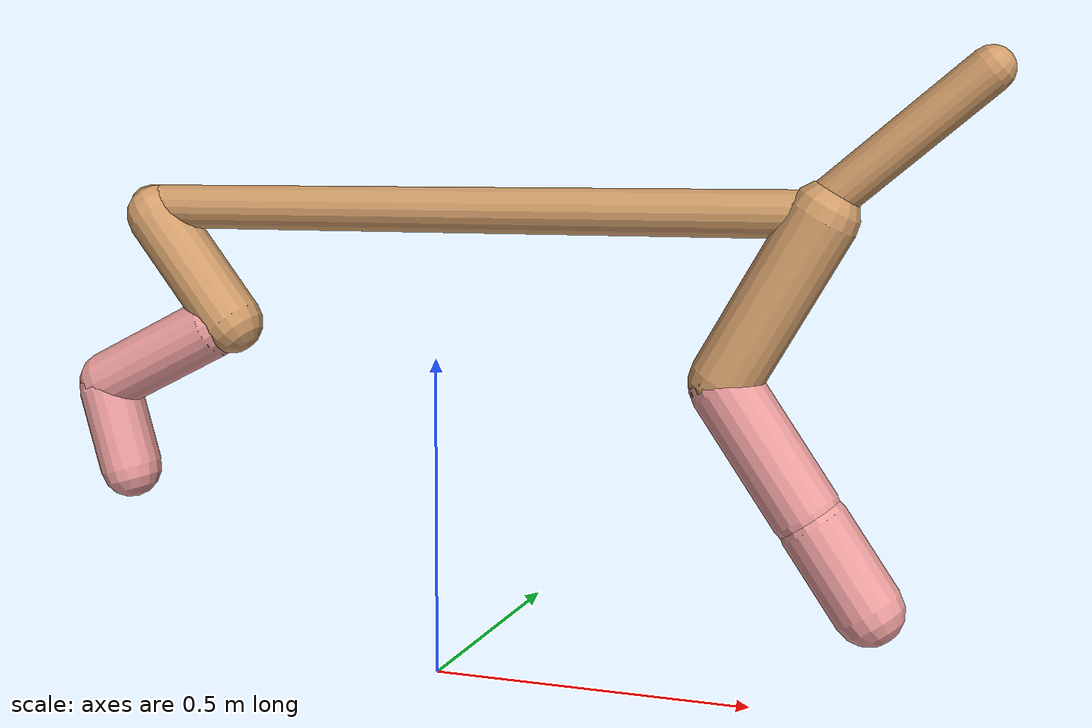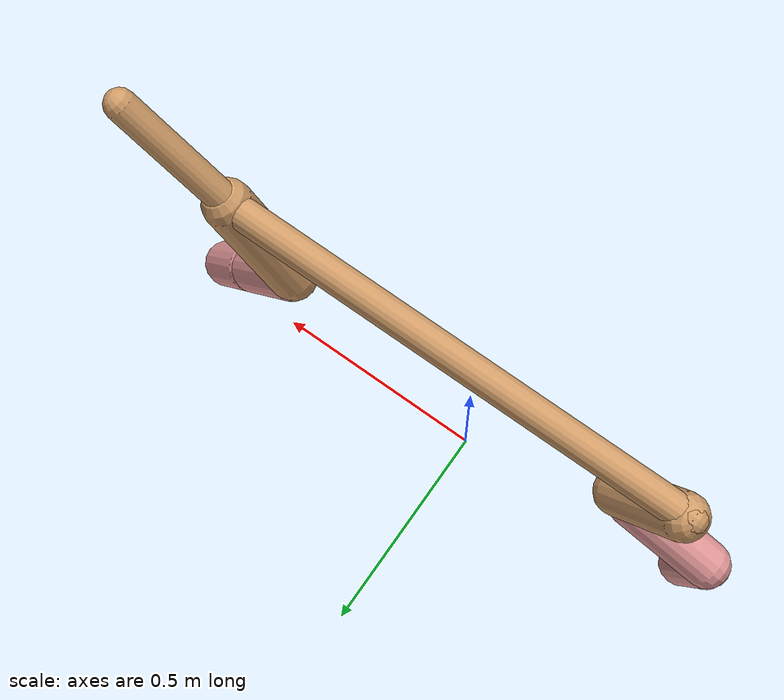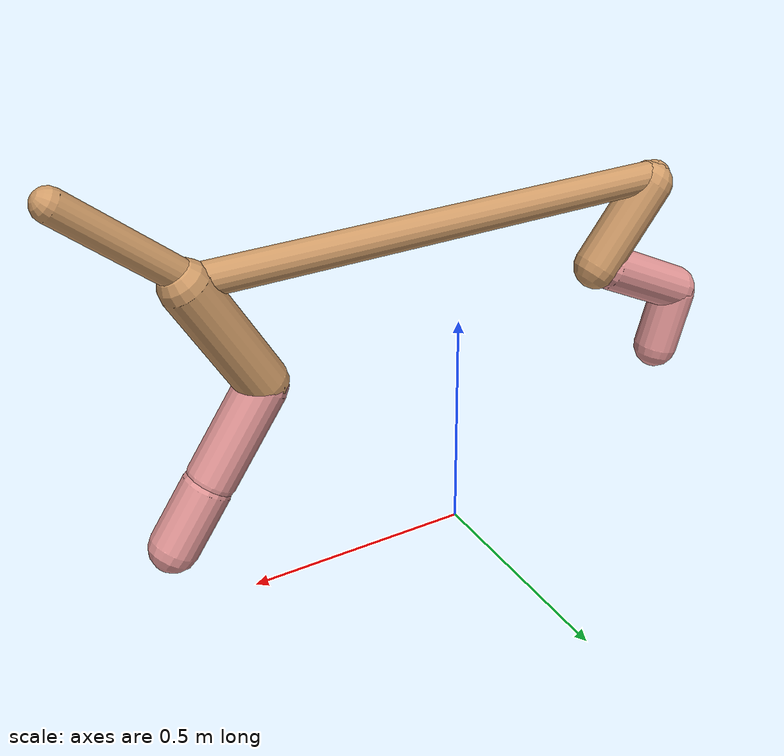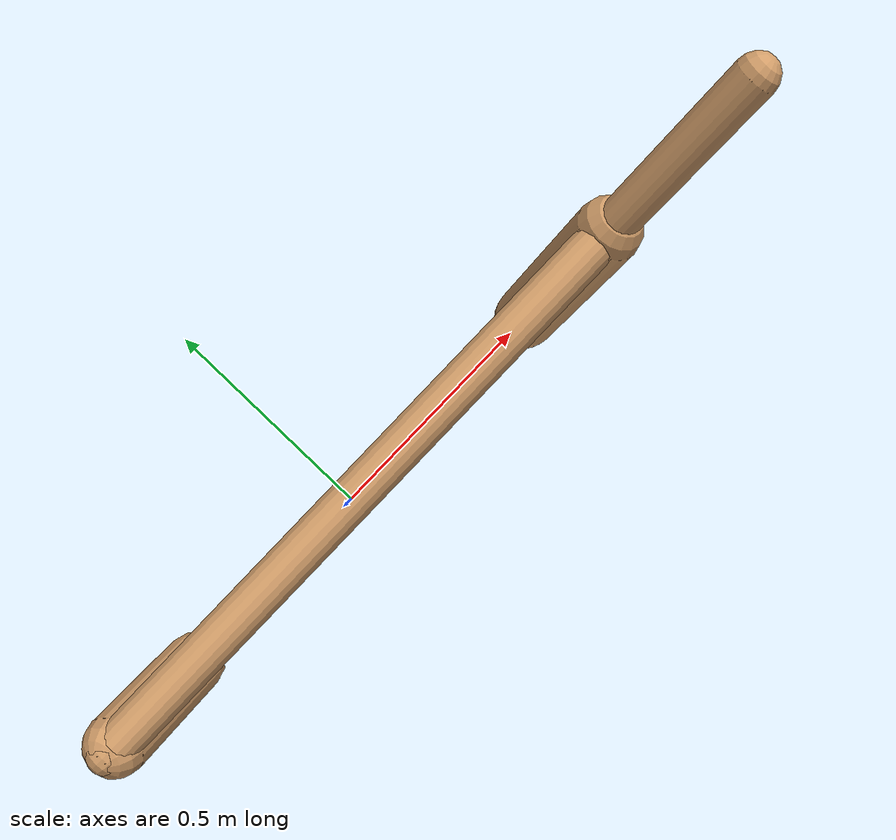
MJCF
<mujoco model="cheetah">
  <compiler angle="radian" coordinate="local" inertiafromgeom="true" settotalmass="14" />
  <default>
    <joint armature=".1" damping=".01" limited="true" solimplimit="0 .8 .03" solreflimit=".02 1" stiffness="8" />
    <geom conaffinity="0" condim="3" contype="1" friction="0.8 .1 .1" rgba="0.8 0.6 .4 1" solimp="0.0 0.8 0.01" solref="0.02 1" />
    <motor ctrllimited="true" ctrlrange="-1 1" />
  </default>
  <size nstack="300000" nuser_geom="1" />
  <option gravity="0 0 -9.81" timestep="0.01" />
  <worldbody>
    <body name="torso" pos="0.0 0.0 0.7297346703075319">
      <joint armature="0" axis="1 0 0" damping="0" limited="false" name="ignorex" pos="0 0 0" stiffness="0" type="slide" />
      <joint armature="0" axis="0 0 1" damping="0" limited="false" name="ignorez" pos="0 0 0" stiffness="0" type="slide" />
      <joint armature="0" axis="0 1 0" damping="0" limited="false" name="ignorey" pos="0 0 0" stiffness="0" type="hinge" />
      <geom fromto="-0.5 0.0 0.0 0.5913333244167034 0.0 0.0" name="torso" size="0.03465538129242555" type="capsule" />
      <geom axisangle="0 1 0 .87" name="head" pos="0.6913333244167034 0.0 0.1" size="0.032907316593197164 0.15" type="capsule" />

      <body name="bthigh" pos="-.5 0 0">
        <joint axis="0 1 0" damping="6" name="bthigh" pos="0 0 0" range="-.52 1.05" stiffness="240" type="hinge" />
        <geom axisangle="0 1 0 -3.8" name="bthigh" pos="0.07698834557010782 0.0 -0.10008484924114017" size="0.050636935396824276 0.10725808053998724" type="capsule" />
        <body name="bshin" pos="0.11397669114021564 0.0 -0.19016969848228032">
          <joint axis="0 1 0" damping="4.5" name="bshin" pos="0 0 0" range="-.785 .785" stiffness="180" type="hinge" />
          <geom axisangle="0 1 0 -2.03" name="bshin" pos="-0.10507855275286457 0.0 -0.052539276376432284" rgba="0.9 0.6 0.6 1" size="0.050636935396824276 0.11095663504136612" type="capsule" />
          <body name="bfoot" pos="-0.21015710550572914 0.0 -0.10507855275286457">
            <joint axis="0 1 0" damping="3" name="bfoot" pos="0 0 0" range="-.4 .785" stiffness="120" type="hinge" />
            <geom axisangle="0 1 0 -.27" name="bfoot" pos="0.02277069047153576 0.0 -0.07362523252463231" rgba="0.9 0.6 0.6 1" size="0.050636935396824276 0.06953282462592277" type="capsule" />
            <inertial mass="10" />
          </body>
        </body>
      </body>
      <body name="fthigh" pos="0.5913333244167034 0.0 0.0">
        <joint axis="0 1 0" damping="4.5" name="fthigh" pos="0 0 0" range="-1.5 0.8" stiffness="180" type="hinge" />
        <geom axisangle="0 1 0 .52" name="fthigh" pos="-0.07208437694901298 0.0 -0.12357321762687938" size="0.05290849284603642 0.13713672714529473" type="capsule" />
        <body name="fshin" pos="-0.14416875389802597 0.0 -0.24714643525375876">
          <joint axis="0 1 0" damping="3" name="fshin" pos="0 0 0" range="-1.2 1.1" stiffness="120" type="hinge" />
          <geom axisangle="0 1 0 -.6" name="fshin" pos="0.06693032747928249 0.0 -0.09267276112516035" rgba="0.9 0.6 0.6 1" size="0.05290849284603642 0.10929694043158827" type="capsule" />
          <body name="ffoot" pos="0.13386065495856497 0.0 -0.1853455222503207">
            <joint axis="0 1 0" damping="1.5" name="ffoot" pos="0 0 0" range="-3.1 -0.3" stiffness="60" type="hinge" />
            <geom axisangle="0 1 0 -.6" name="ffoot" pos="0.04617735084579513 0.0 -0.07183143464901465" rgba="0.9 0.6 0.6 1" size="0.05290849284603642 0.07217722481331301" type="capsule" />
            <inertial mass="10" />
          </body>
        </body>
      </body>
    </body>
  </worldbody>
  <actuator>
    <motor gear="120" joint="bthigh" name="bthigh" />
    <motor gear="90" joint="bshin" name="bshin" />
    <motor gear="60" joint="bfoot" name="bfoot" />
    <motor gear="120" joint="fthigh" name="fthigh" />
    <motor gear="60" joint="fshin" name="fshin" />
    <motor gear="30" joint="ffoot" name="ffoot" />
  </actuator>
</mujoco>
